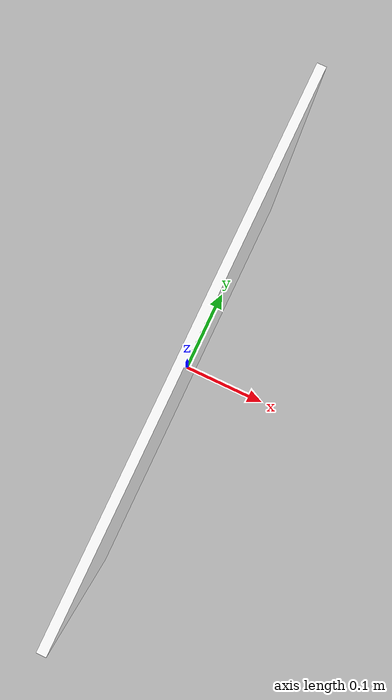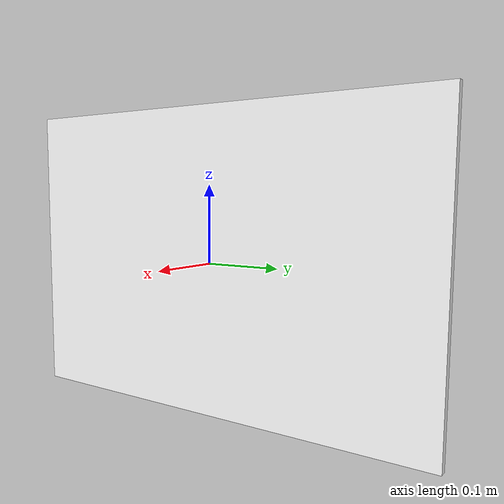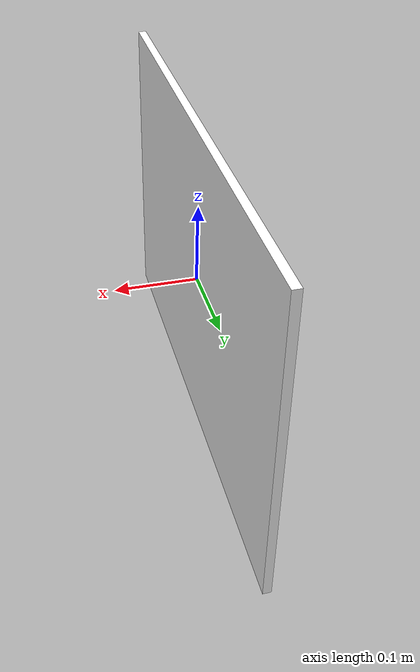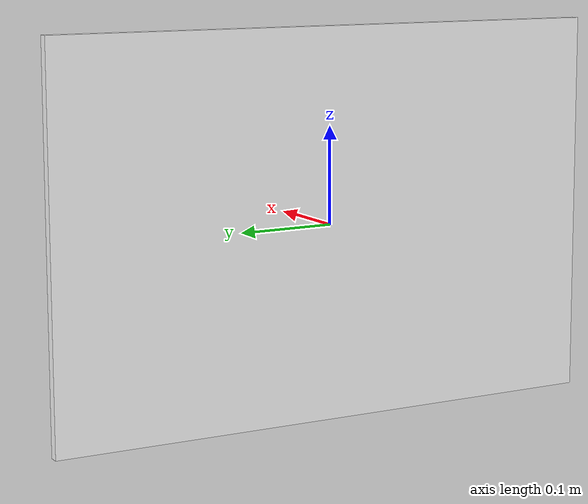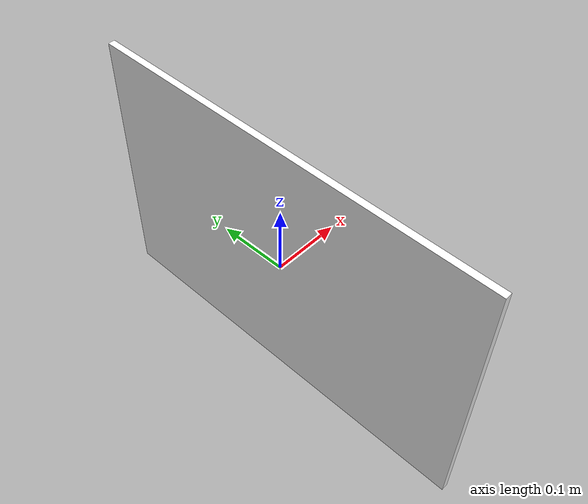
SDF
<?xml version="1.0"?>
<sdf version="1.10">
  <model name="honeycomb_plane">
    <static>true</static>
    <link name="link">
      <!-- thin slab: X = thickness, Y = width (0.60), Z = height (0.40) -->
      <collision name="collision">
        <geometry>
          <box><size>0.01 0.60 0.40</size></box>
        </geometry>
      </collision>

      <visual name="visual">
        <geometry>
          <box><size>0.01 0.60 0.40</size></box>
        </geometry>
        <material>
          <diffuse>1 1 1 1</diffuse>
          <specular>0.1 0.1 0.1 1</specular>
          <pbr>
            <metal>
              <albedo_map>materials/textures/comb.jpg</albedo_map>
              <metalness>0.0</metalness>
              <roughness>0.95</roughness>
            </metal>
          </pbr>
        </material>
      </visual>
    </link>
  </model>
</sdf>
